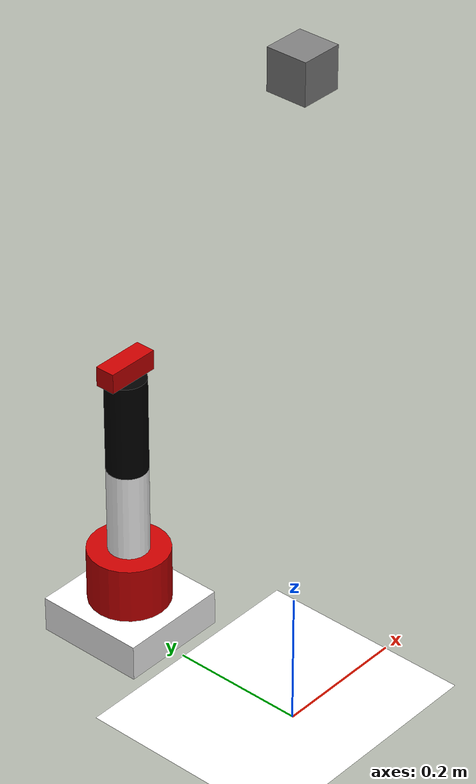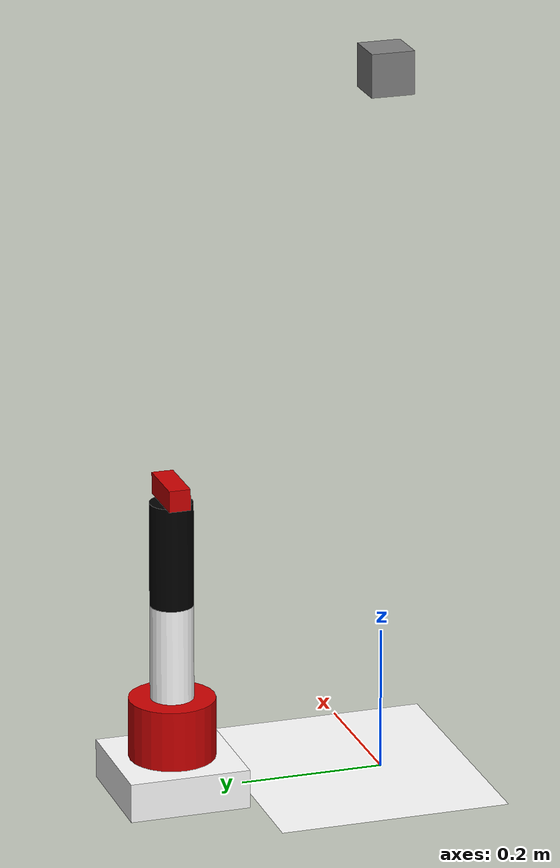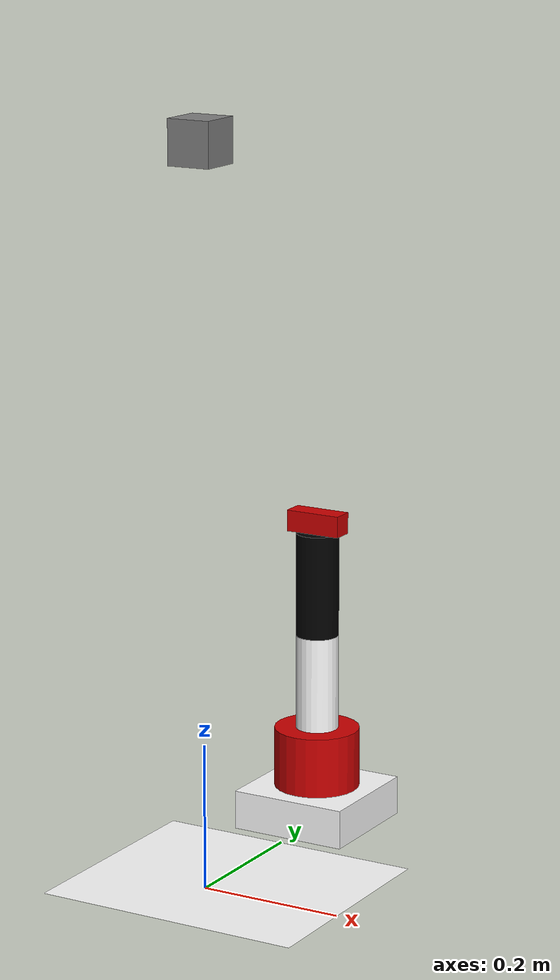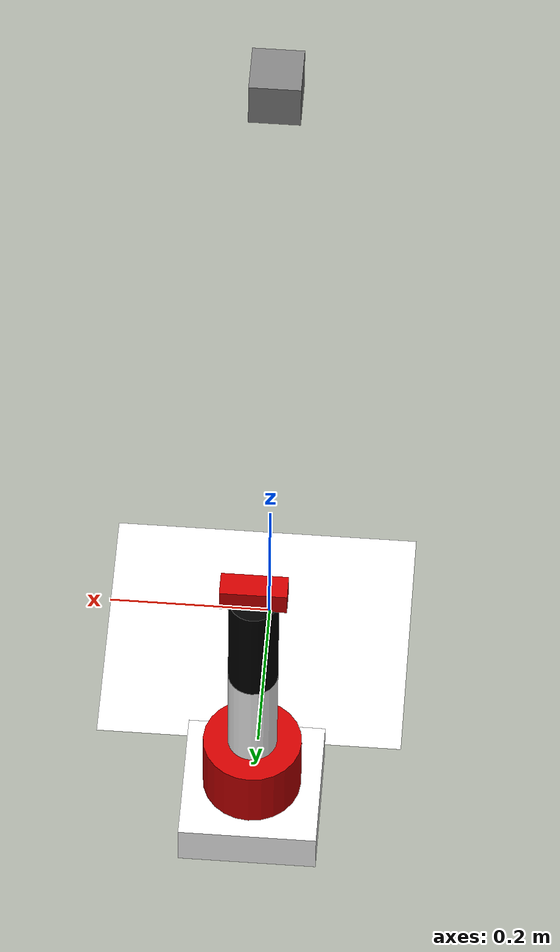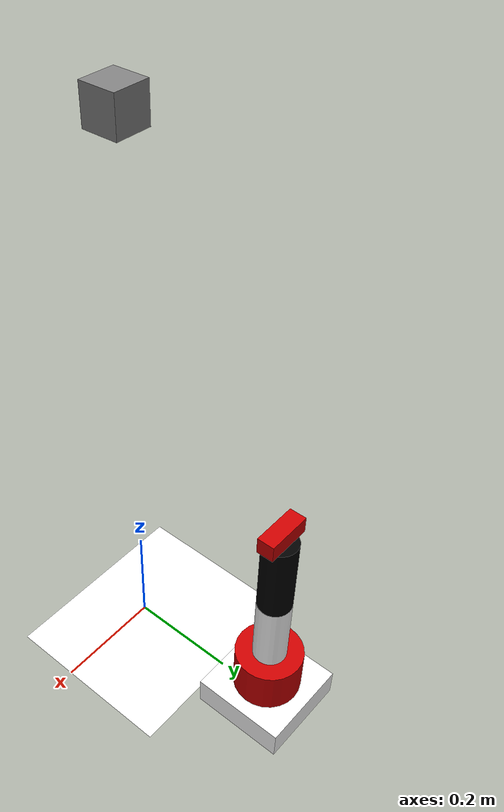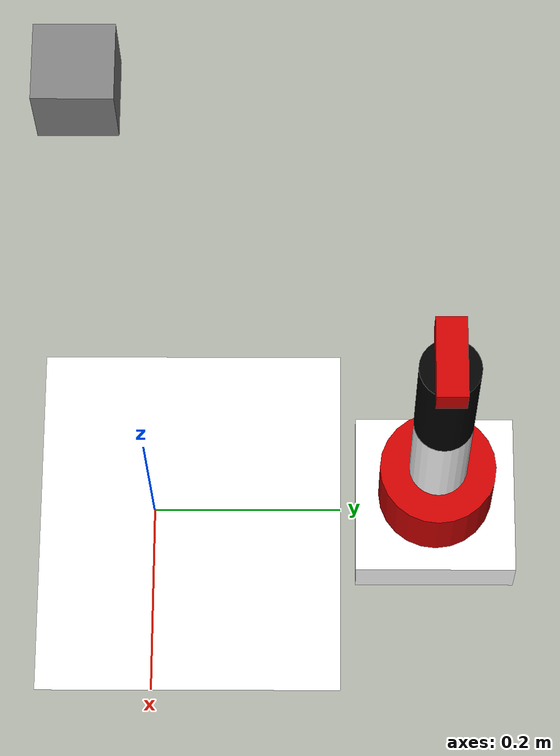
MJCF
<mujoco model="dobot_push">
  <worldbody>
      <light diffuse=".5 .5 .5" pos="0 0 3" dir="0 0 -1"/>
      <!--table-->
      <geom type="plane" size="0.2 0.2 0.1" rgba="1 1 1 1"/>
      <!--cube-->
      <body pos="0 0 1">
         <joint type="free"/>
         <geom name="cube" pos="0 0 0" size="0.03 0.03 0.03" type="box"/>
      </body>
   </worldbody>
  <!--robot-->
  <include file="./dobot.xml"/>
</mujoco>

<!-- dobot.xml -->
<mujoco model="dobot_arm">
    <compiler angle="radian" />
    <size njmax="500" nconmax="100" />
    <worldbody>
        <body name="base_link" pos="0 0.3 0">
            <geom size="0.084 0.084 0.0275" pos="0 0 0.0275" type="box" rgba="1 1 1 1" />
            <body name="shoulder_link" pos="0 0 0.055">
                <joint name="shoulder_joint" pos="0 0 0" axis="0 0 1" limited="true" range="-2.35619 2.35619" />
                <geom size="0.06 0.0425" pos="0 0 0.0425" type="cylinder" rgba="0.8 0 0 1" />
                <body name="bigarm_link" pos="0 0 0.085">
                    <joint name="bigarm_joint" pos="0 0 0" axis="0 1 0" limited="true" range="0 1.48353" />
                    <geom size="0.03 0.0675" pos="0 0 0.0675" type="cylinder" rgba="1 1 1 1" />
                    <body name="forearm_link" pos="0 0 0.135">
                        <joint name="forearm_joint" pos="0 0 0" axis="0 1 0" limited="true" range="-0.174533 1.65806" />
                        <geom size="0.03 0.0735" pos="0 0 0.0735" type="cylinder" rgba="0 0 0 1" />
                        <body name="chuck_link" pos="0 0 0.147">
                            <joint name="chuck_joint" pos="0 0 0" axis="0 1 0" limited="true" range="-1.5708 1.5708" />
                            <geom size="0.04 0.015 0.015" pos="0 0 0.0155" type="box" rgba="0.8 0 0 1" />
                        </body>
                    </body>
                </body>
            </body>
        </body>
    </worldbody>
</mujoco>
